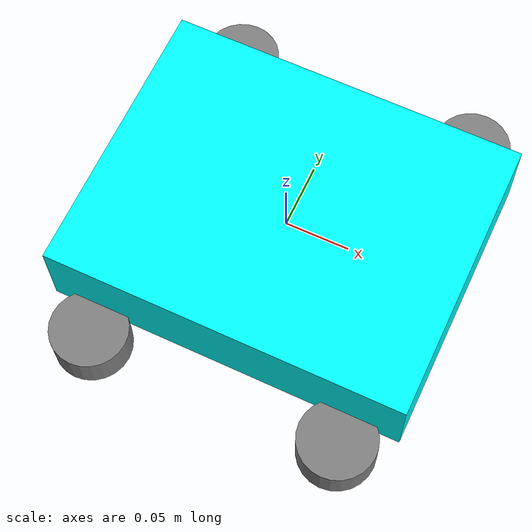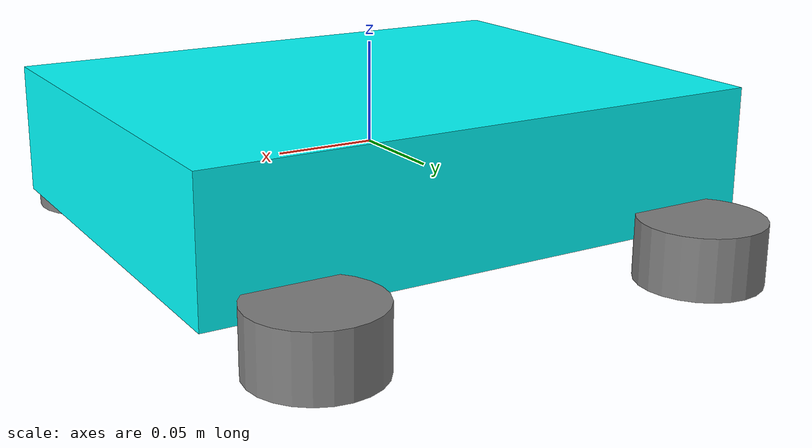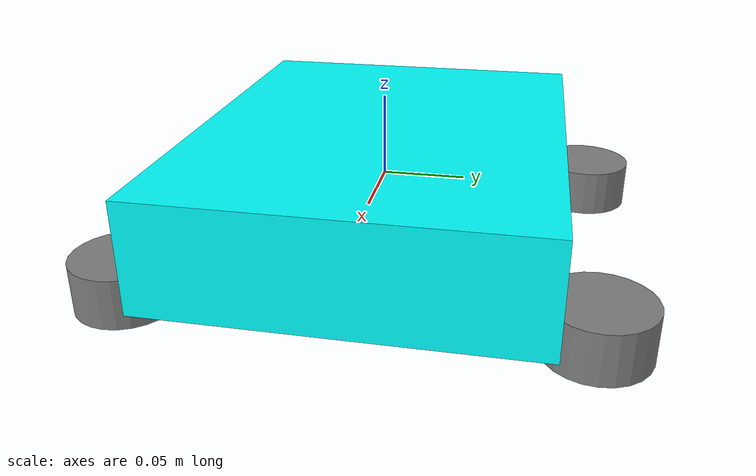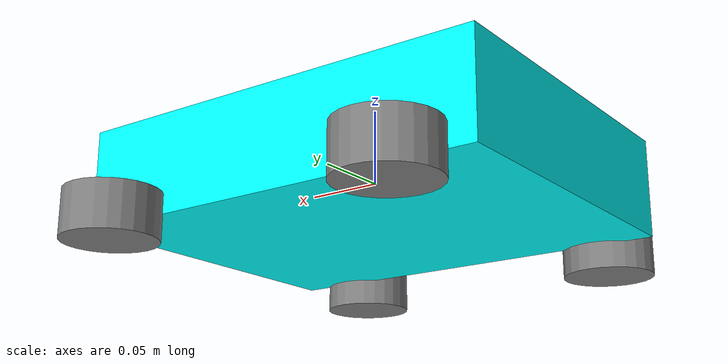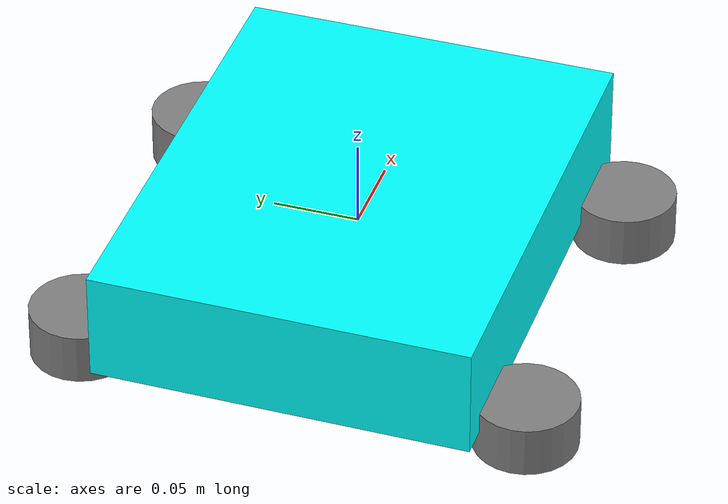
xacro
<?xml version="1.0"?>
<robot xmlns:xacro="http://www.ros.org/wiki/xacro" name="car_description">
    <!-- Define robot constants -->
    <xacro:property name="base_width" value="0.22"/>
    <xacro:property name="base_length" value="0.28"/>
    <xacro:property name="base_height" value="0.065"/>

    <xacro:property name="wheel_radius" value="0.03"/>
    <xacro:property name="wheel_width" value="0.03"/>
    <xacro:property name="wheel_ygap" value="0.02"/>
    <xacro:property name="wheel_zoff" value="0.035"/>
    <xacro:property name="wheel_xoff" value="0.10"/>

    <!-- Robot base -->
    <link name="base_link">
        <visual>
            <geometry>
                <box size="${base_length} ${base_width} ${base_height}"/>
            </geometry>
            <material name="Cyan">
                <color rgba="0 1 1 1"/>
            </material>
        </visual>
    </link>

    <!-- Robot Footprint -->
    <link name="base_footprint"/>

    <joint name="base_joint" type="fixed">
        <parent link="base_link"/>
        <child link="base_footprint"/>
        <origin xyz="0 0 ${-(wheel_radius+wheel_zoff)}" rpy="0 0 0"/>
        <!--axis xyz="0 0 0"/-->
    </joint>

    <!-- Wheels -->
    <xacro:macro name="wheel" params="prefix x_reflect y_reflect">
        <link name="${prefix}_link">
            <visual>
                <geometry>
                    <cylinder radius="${wheel_radius}" length="${wheel_width}"/>
                </geometry>
                <material name="Gray">
                    <color rgba="0.5 0.5 0.5 1"/>
                </material>
            </visual>
        </link>

        <joint name="${prefix}_joint" type="continuous">
            <parent link="base_link"/>
            <child link="${prefix}_link"/>
            <origin xyz="${x_reflect*wheel_xoff} ${y_reflect*(base_width/2+wheel_ygap)} ${-wheel_zoff}" rpy="0 0 0"/>
            <axis xyz="0 1 0"/>
        </joint>
    </xacro:macro>

    <xacro:wheel prefix="left_front" x_reflect="1" y_reflect="1"/>
    <xacro:wheel prefix="right_front" x_reflect="1" y_reflect="-1"/>
    <xacro:wheel prefix="left_rear" x_reflect="-1" y_reflect="1"/>
    <xacro:wheel prefix="right_rear" x_reflect="-1" y_reflect="-1"/>
</robot>
